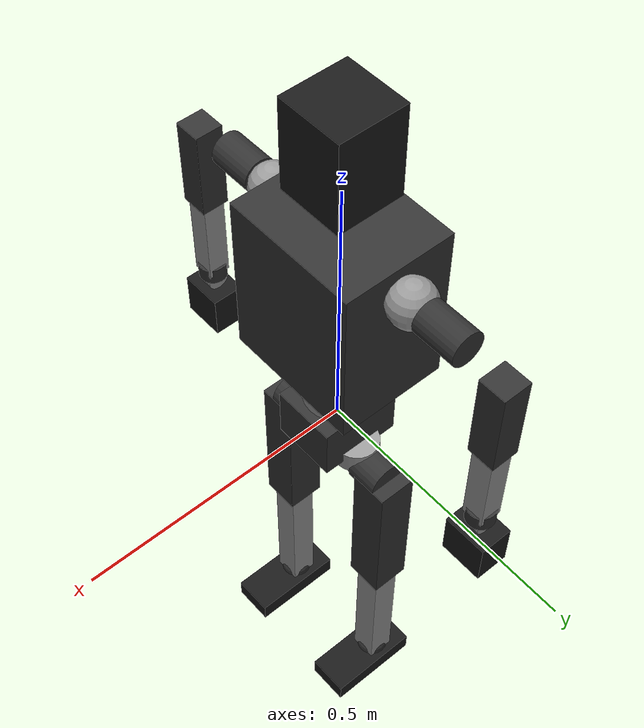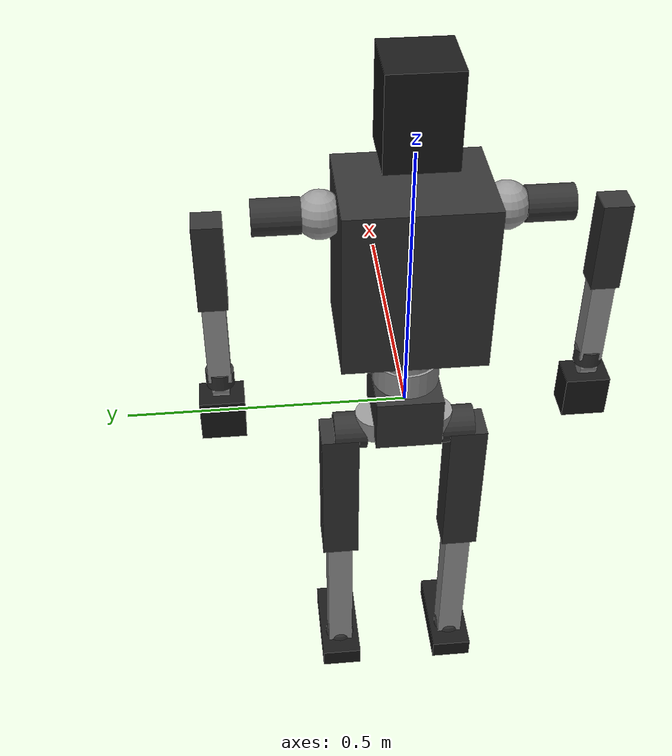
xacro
<?xml version="1.0"?>
<robot xmlns:xacro="http://www.ros.org/wiki/xacro" name="g1">
  <!--
    Unitree G1 Humanoid Robot URDF
    29 DOF Configuration:
    - 6 joints per leg (12 total for locomotion)
    - 3 joints in waist/torso
    - 7 joints per arm (14 total for manipulation)
  -->

  <!-- Properties -->
  <xacro:property name="PI" value="3.14159265359"/>

  <!-- Materials -->
  <material name="dark_grey">
    <color rgba="0.2 0.2 0.2 1.0"/>
  </material>
  <material name="light_grey">
    <color rgba="0.6 0.6 0.6 1.0"/>
  </material>
  <material name="black">
    <color rgba="0.1 0.1 0.1 1.0"/>
  </material>
  <material name="blue">
    <color rgba="0.0 0.4 0.8 1.0"/>
  </material>

  <!-- Base Link (Pelvis) -->
  <link name="base_link">
    <visual>
      <origin xyz="0 0 0" rpy="0 0 0"/>
      <geometry>
        <box size="0.15 0.12 0.10"/>
      </geometry>
      <material name="dark_grey"/>
    </visual>
    <collision>
      <origin xyz="0 0 0" rpy="0 0 0"/>
      <geometry>
        <box size="0.15 0.12 0.10"/>
      </geometry>
    </collision>
    <inertial>
      <origin xyz="0 0 0" rpy="0 0 0"/>
      <mass value="5.0"/>
      <inertia ixx="0.02" ixy="0" ixz="0" iyy="0.03" iyz="0" izz="0.02"/>
    </inertial>
  </link>

  <!-- ==================== WAIST/TORSO (3 DOF) ==================== -->

  <!-- Waist Yaw -->
  <joint name="waist_yaw_joint" type="revolute">
    <parent link="base_link"/>
    <child link="waist_yaw_link"/>
    <origin xyz="0 0 0.05" rpy="0 0 0"/>
    <axis xyz="0 0 1"/>
    <limit lower="-0.75" upper="0.75" effort="100" velocity="3.0"/>
    <dynamics damping="1.0" friction="0.1"/>
  </joint>

  <link name="waist_yaw_link">
    <visual>
      <origin xyz="0 0 0.025" rpy="0 0 0"/>
      <geometry>
        <cylinder radius="0.06" length="0.05"/>
      </geometry>
      <material name="light_grey"/>
    </visual>
    <collision>
      <origin xyz="0 0 0.025" rpy="0 0 0"/>
      <geometry>
        <cylinder radius="0.06" length="0.05"/>
      </geometry>
    </collision>
    <inertial>
      <origin xyz="0 0 0.025" rpy="0 0 0"/>
      <mass value="1.5"/>
      <inertia ixx="0.005" ixy="0" ixz="0" iyy="0.005" iyz="0" izz="0.003"/>
    </inertial>
  </link>

  <!-- Waist Roll -->
  <joint name="waist_roll_joint" type="revolute">
    <parent link="waist_yaw_link"/>
    <child link="waist_roll_link"/>
    <origin xyz="0 0 0.05" rpy="0 0 0"/>
    <axis xyz="1 0 0"/>
    <limit lower="-0.35" upper="0.35" effort="100" velocity="3.0"/>
    <dynamics damping="1.0" friction="0.1"/>
  </joint>

  <link name="waist_roll_link">
    <visual>
      <origin xyz="0 0 0.025" rpy="0 0 0"/>
      <geometry>
        <cylinder radius="0.055" length="0.05"/>
      </geometry>
      <material name="light_grey"/>
    </visual>
    <collision>
      <origin xyz="0 0 0.025" rpy="0 0 0"/>
      <geometry>
        <cylinder radius="0.055" length="0.05"/>
      </geometry>
    </collision>
    <inertial>
      <origin xyz="0 0 0.025" rpy="0 0 0"/>
      <mass value="1.2"/>
      <inertia ixx="0.004" ixy="0" ixz="0" iyy="0.004" iyz="0" izz="0.002"/>
    </inertial>
  </link>

  <!-- Waist Pitch (connects to torso) -->
  <joint name="waist_pitch_joint" type="revolute">
    <parent link="waist_roll_link"/>
    <child link="torso_link"/>
    <origin xyz="0 0 0.05" rpy="0 0 0"/>
    <axis xyz="0 1 0"/>
    <limit lower="-0.35" upper="0.35" effort="100" velocity="3.0"/>
    <dynamics damping="1.0" friction="0.1"/>
  </joint>

  <!-- Torso Link -->
  <link name="torso_link">
    <visual>
      <origin xyz="0 0 0.15" rpy="0 0 0"/>
      <geometry>
        <box size="0.20 0.25 0.30"/>
      </geometry>
      <material name="dark_grey"/>
    </visual>
    <collision>
      <origin xyz="0 0 0.15" rpy="0 0 0"/>
      <geometry>
        <box size="0.20 0.25 0.30"/>
      </geometry>
    </collision>
    <inertial>
      <origin xyz="0 0 0.15" rpy="0 0 0"/>
      <mass value="8.0"/>
      <inertia ixx="0.15" ixy="0" ixz="0" iyy="0.12" iyz="0" izz="0.08"/>
    </inertial>
  </link>

  <!-- Head (fixed) -->
  <joint name="head_joint" type="fixed">
    <parent link="torso_link"/>
    <child link="head_link"/>
    <origin xyz="0 0 0.35" rpy="0 0 0"/>
  </joint>

  <link name="head_link">
    <visual>
      <origin xyz="0 0 0.08" rpy="0 0 0"/>
      <geometry>
        <box size="0.12 0.12 0.16"/>
      </geometry>
      <material name="black"/>
    </visual>
    <collision>
      <origin xyz="0 0 0.08" rpy="0 0 0"/>
      <geometry>
        <box size="0.12 0.12 0.16"/>
      </geometry>
    </collision>
    <inertial>
      <origin xyz="0 0 0.08" rpy="0 0 0"/>
      <mass value="1.5"/>
      <inertia ixx="0.005" ixy="0" ixz="0" iyy="0.005" iyz="0" izz="0.003"/>
    </inertial>
  </link>

  <!-- ==================== ARM MACRO (7 DOF each) ==================== -->
  <xacro:macro name="arm" params="side parent y_offset">

    <!-- Shoulder Pitch -->
    <joint name="${side}_shoulder_pitch_joint" type="revolute">
      <parent link="${parent}"/>
      <child link="${side}_shoulder_pitch_link"/>
      <origin xyz="0 ${y_offset * 0.15} 0.25" rpy="0 0 0"/>
      <axis xyz="0 1 0"/>
      <limit lower="-2.87" upper="2.87" effort="50" velocity="5.0"/>
      <dynamics damping="0.5" friction="0.1"/>
    </joint>

    <link name="${side}_shoulder_pitch_link">
      <visual>
        <origin xyz="0 0 0" rpy="0 0 0"/>
        <geometry>
          <sphere radius="0.04"/>
        </geometry>
        <material name="light_grey"/>
      </visual>
      <collision>
        <origin xyz="0 0 0" rpy="0 0 0"/>
        <geometry>
          <sphere radius="0.04"/>
        </geometry>
      </collision>
      <inertial>
        <origin xyz="0 0 0" rpy="0 0 0"/>
        <mass value="0.8"/>
        <inertia ixx="0.001" ixy="0" ixz="0" iyy="0.001" iyz="0" izz="0.001"/>
      </inertial>
    </link>

    <!-- Shoulder Roll -->
    <joint name="${side}_shoulder_roll_joint" type="revolute">
      <parent link="${side}_shoulder_pitch_link"/>
      <child link="${side}_shoulder_roll_link"/>
      <origin xyz="0 ${y_offset * 0.02} 0" rpy="0 0 0"/>
      <axis xyz="1 0 0"/>
      <limit lower="${-1.5 if y_offset > 0 else -0.3}" upper="${0.3 if y_offset > 0 else 1.5}" effort="50" velocity="5.0"/>
      <dynamics damping="0.5" friction="0.1"/>
    </joint>

    <link name="${side}_shoulder_roll_link">
      <visual>
        <origin xyz="0 ${y_offset * 0.05} 0" rpy="${PI/2} 0 0"/>
        <geometry>
          <cylinder radius="0.03" length="0.08"/>
        </geometry>
        <material name="dark_grey"/>
      </visual>
      <collision>
        <origin xyz="0 ${y_offset * 0.05} 0" rpy="${PI/2} 0 0"/>
        <geometry>
          <cylinder radius="0.03" length="0.08"/>
        </geometry>
      </collision>
      <inertial>
        <origin xyz="0 ${y_offset * 0.05} 0" rpy="0 0 0"/>
        <mass value="0.6"/>
        <inertia ixx="0.0008" ixy="0" ixz="0" iyy="0.0008" iyz="0" izz="0.0005"/>
      </inertial>
    </link>

    <!-- Shoulder Yaw -->
    <joint name="${side}_shoulder_yaw_joint" type="revolute">
      <parent link="${side}_shoulder_roll_link"/>
      <child link="${side}_upper_arm_link"/>
      <origin xyz="0 ${y_offset * 0.08} 0" rpy="0 0 0"/>
      <axis xyz="0 0 1"/>
      <limit lower="-1.57" upper="1.57" effort="50" velocity="5.0"/>
      <dynamics damping="0.5" friction="0.1"/>
    </joint>

    <link name="${side}_upper_arm_link">
      <visual>
        <origin xyz="0 ${y_offset * 0.08} -0.08" rpy="0 0 0"/>
        <geometry>
          <box size="0.05 0.05 0.16"/>
        </geometry>
        <material name="dark_grey"/>
      </visual>
      <collision>
        <origin xyz="0 ${y_offset * 0.08} -0.08" rpy="0 0 0"/>
        <geometry>
          <box size="0.05 0.05 0.16"/>
        </geometry>
      </collision>
      <inertial>
        <origin xyz="0 ${y_offset * 0.08} -0.08" rpy="0 0 0"/>
        <mass value="1.0"/>
        <inertia ixx="0.003" ixy="0" ixz="0" iyy="0.003" iyz="0" izz="0.001"/>
      </inertial>
    </link>

    <!-- Elbow -->
    <joint name="${side}_elbow_joint" type="revolute">
      <parent link="${side}_upper_arm_link"/>
      <child link="${side}_lower_arm_link"/>
      <origin xyz="0 ${y_offset * 0.08} -0.16" rpy="0 0 0"/>
      <axis xyz="0 1 0"/>
      <limit lower="${-2.35 if y_offset > 0 else 0}" upper="${0 if y_offset > 0 else 2.35}" effort="50" velocity="5.0"/>
      <dynamics damping="0.5" friction="0.1"/>
    </joint>

    <link name="${side}_lower_arm_link">
      <visual>
        <origin xyz="0 0 -0.08" rpy="0 0 0"/>
        <geometry>
          <box size="0.04 0.04 0.16"/>
        </geometry>
        <material name="light_grey"/>
      </visual>
      <collision>
        <origin xyz="0 0 -0.08" rpy="0 0 0"/>
        <geometry>
          <box size="0.04 0.04 0.16"/>
        </geometry>
      </collision>
      <inertial>
        <origin xyz="0 0 -0.08" rpy="0 0 0"/>
        <mass value="0.8"/>
        <inertia ixx="0.002" ixy="0" ixz="0" iyy="0.002" iyz="0" izz="0.0008"/>
      </inertial>
    </link>

    <!-- Wrist Yaw -->
    <joint name="${side}_wrist_yaw_joint" type="revolute">
      <parent link="${side}_lower_arm_link"/>
      <child link="${side}_wrist_yaw_link"/>
      <origin xyz="0 0 -0.16" rpy="0 0 0"/>
      <axis xyz="0 0 1"/>
      <limit lower="-1.57" upper="1.57" effort="20" velocity="5.0"/>
      <dynamics damping="0.3" friction="0.05"/>
    </joint>

    <link name="${side}_wrist_yaw_link">
      <visual>
        <origin xyz="0 0 0" rpy="0 0 0"/>
        <geometry>
          <cylinder radius="0.025" length="0.03"/>
        </geometry>
        <material name="dark_grey"/>
      </visual>
      <collision>
        <origin xyz="0 0 0" rpy="0 0 0"/>
        <geometry>
          <cylinder radius="0.025" length="0.03"/>
        </geometry>
      </collision>
      <inertial>
        <origin xyz="0 0 0" rpy="0 0 0"/>
        <mass value="0.2"/>
        <inertia ixx="0.0001" ixy="0" ixz="0" iyy="0.0001" iyz="0" izz="0.0001"/>
      </inertial>
    </link>

    <!-- Wrist Roll -->
    <joint name="${side}_wrist_roll_joint" type="revolute">
      <parent link="${side}_wrist_yaw_link"/>
      <child link="${side}_wrist_roll_link"/>
      <origin xyz="0 0 -0.02" rpy="0 0 0"/>
      <axis xyz="1 0 0"/>
      <limit lower="-1.57" upper="1.57" effort="20" velocity="5.0"/>
      <dynamics damping="0.3" friction="0.05"/>
    </joint>

    <link name="${side}_wrist_roll_link">
      <visual>
        <origin xyz="0 0 0" rpy="${PI/2} 0 0"/>
        <geometry>
          <cylinder radius="0.02" length="0.03"/>
        </geometry>
        <material name="light_grey"/>
      </visual>
      <collision>
        <origin xyz="0 0 0" rpy="${PI/2} 0 0"/>
        <geometry>
          <cylinder radius="0.02" length="0.03"/>
        </geometry>
      </collision>
      <inertial>
        <origin xyz="0 0 0" rpy="0 0 0"/>
        <mass value="0.15"/>
        <inertia ixx="0.00008" ixy="0" ixz="0" iyy="0.00008" iyz="0" izz="0.00005"/>
      </inertial>
    </link>

    <!-- Wrist Pitch (connects to hand) -->
    <joint name="${side}_wrist_pitch_joint" type="revolute">
      <parent link="${side}_wrist_roll_link"/>
      <child link="${side}_hand_link"/>
      <origin xyz="0 0 -0.02" rpy="0 0 0"/>
      <axis xyz="0 1 0"/>
      <limit lower="-1.0" upper="1.0" effort="20" velocity="5.0"/>
      <dynamics damping="0.3" friction="0.05"/>
    </joint>

    <link name="${side}_hand_link">
      <visual>
        <origin xyz="0 0 -0.04" rpy="0 0 0"/>
        <geometry>
          <box size="0.06 0.08 0.08"/>
        </geometry>
        <material name="black"/>
      </visual>
      <collision>
        <origin xyz="0 0 -0.04" rpy="0 0 0"/>
        <geometry>
          <box size="0.06 0.08 0.08"/>
        </geometry>
      </collision>
      <inertial>
        <origin xyz="0 0 -0.04" rpy="0 0 0"/>
        <mass value="0.4"/>
        <inertia ixx="0.0005" ixy="0" ixz="0" iyy="0.0005" iyz="0" izz="0.0003"/>
      </inertial>
    </link>

  </xacro:macro>

  <!-- ==================== LEG MACRO (6 DOF each) ==================== -->
  <xacro:macro name="leg" params="side parent y_offset">

    <!-- Hip Yaw -->
    <joint name="${side}_hip_yaw_joint" type="revolute">
      <parent link="${parent}"/>
      <child link="${side}_hip_yaw_link"/>
      <origin xyz="0 ${y_offset * 0.05} -0.05" rpy="0 0 0"/>
      <axis xyz="0 0 1"/>
      <limit lower="-0.43" upper="0.43" effort="150" velocity="3.0"/>
      <dynamics damping="2.0" friction="0.2"/>
    </joint>

    <link name="${side}_hip_yaw_link">
      <visual>
        <origin xyz="0 0 0" rpy="0 0 0"/>
        <geometry>
          <cylinder radius="0.04" length="0.04"/>
        </geometry>
        <material name="light_grey"/>
      </visual>
      <collision>
        <origin xyz="0 0 0" rpy="0 0 0"/>
        <geometry>
          <cylinder radius="0.04" length="0.04"/>
        </geometry>
      </collision>
      <inertial>
        <origin xyz="0 0 0" rpy="0 0 0"/>
        <mass value="1.0"/>
        <inertia ixx="0.002" ixy="0" ixz="0" iyy="0.002" iyz="0" izz="0.001"/>
      </inertial>
    </link>

    <!-- Hip Roll -->
    <joint name="${side}_hip_roll_joint" type="revolute">
      <parent link="${side}_hip_yaw_link"/>
      <child link="${side}_hip_roll_link"/>
      <origin xyz="0 ${y_offset * 0.02} -0.02" rpy="0 0 0"/>
      <axis xyz="1 0 0"/>
      <limit lower="${-0.43 if y_offset > 0 else -0.43}" upper="${0.43 if y_offset > 0 else 0.43}" effort="150" velocity="3.0"/>
      <dynamics damping="2.0" friction="0.2"/>
    </joint>

    <link name="${side}_hip_roll_link">
      <visual>
        <origin xyz="0 ${y_offset * 0.03} 0" rpy="${PI/2} 0 0"/>
        <geometry>
          <cylinder radius="0.035" length="0.06"/>
        </geometry>
        <material name="dark_grey"/>
      </visual>
      <collision>
        <origin xyz="0 ${y_offset * 0.03} 0" rpy="${PI/2} 0 0"/>
        <geometry>
          <cylinder radius="0.035" length="0.06"/>
        </geometry>
      </collision>
      <inertial>
        <origin xyz="0 ${y_offset * 0.03} 0" rpy="0 0 0"/>
        <mass value="0.8"/>
        <inertia ixx="0.0015" ixy="0" ixz="0" iyy="0.0015" iyz="0" izz="0.0008"/>
      </inertial>
    </link>

    <!-- Hip Pitch -->
    <joint name="${side}_hip_pitch_joint" type="revolute">
      <parent link="${side}_hip_roll_link"/>
      <child link="${side}_thigh_link"/>
      <origin xyz="0 ${y_offset * 0.05} 0" rpy="0 0 0"/>
      <axis xyz="0 1 0"/>
      <limit lower="-1.57" upper="0.52" effort="200" velocity="3.0"/>
      <dynamics damping="2.0" friction="0.2"/>
    </joint>

    <link name="${side}_thigh_link">
      <visual>
        <origin xyz="0 0 -0.15" rpy="0 0 0"/>
        <geometry>
          <box size="0.07 0.07 0.30"/>
        </geometry>
        <material name="dark_grey"/>
      </visual>
      <collision>
        <origin xyz="0 0 -0.15" rpy="0 0 0"/>
        <geometry>
          <box size="0.07 0.07 0.30"/>
        </geometry>
      </collision>
      <inertial>
        <origin xyz="0 0 -0.15" rpy="0 0 0"/>
        <mass value="3.0"/>
        <inertia ixx="0.03" ixy="0" ixz="0" iyy="0.03" iyz="0" izz="0.005"/>
      </inertial>
    </link>

    <!-- Knee -->
    <joint name="${side}_knee_joint" type="revolute">
      <parent link="${side}_thigh_link"/>
      <child link="${side}_calf_link"/>
      <origin xyz="0 0 -0.30" rpy="0 0 0"/>
      <axis xyz="0 1 0"/>
      <limit lower="0.0" upper="2.53" effort="200" velocity="3.0"/>
      <dynamics damping="2.0" friction="0.2"/>
    </joint>

    <link name="${side}_calf_link">
      <visual>
        <origin xyz="0 0 -0.15" rpy="0 0 0"/>
        <geometry>
          <box size="0.05 0.05 0.30"/>
        </geometry>
        <material name="light_grey"/>
      </visual>
      <collision>
        <origin xyz="0 0 -0.15" rpy="0 0 0"/>
        <geometry>
          <box size="0.05 0.05 0.30"/>
        </geometry>
      </collision>
      <inertial>
        <origin xyz="0 0 -0.15" rpy="0 0 0"/>
        <mass value="2.0"/>
        <inertia ixx="0.02" ixy="0" ixz="0" iyy="0.02" iyz="0" izz="0.003"/>
      </inertial>
    </link>

    <!-- Ankle Pitch -->
    <joint name="${side}_ankle_pitch_joint" type="revolute">
      <parent link="${side}_calf_link"/>
      <child link="${side}_ankle_link"/>
      <origin xyz="0 0 -0.30" rpy="0 0 0"/>
      <axis xyz="0 1 0"/>
      <limit lower="-0.87" upper="0.52" effort="100" velocity="3.0"/>
      <dynamics damping="1.5" friction="0.15"/>
    </joint>

    <link name="${side}_ankle_link">
      <visual>
        <origin xyz="0 0 0" rpy="0 0 0"/>
        <geometry>
          <sphere radius="0.03"/>
        </geometry>
        <material name="dark_grey"/>
      </visual>
      <collision>
        <origin xyz="0 0 0" rpy="0 0 0"/>
        <geometry>
          <sphere radius="0.03"/>
        </geometry>
      </collision>
      <inertial>
        <origin xyz="0 0 0" rpy="0 0 0"/>
        <mass value="0.5"/>
        <inertia ixx="0.0003" ixy="0" ixz="0" iyy="0.0003" iyz="0" izz="0.0002"/>
      </inertial>
    </link>

    <!-- Ankle Roll -->
    <joint name="${side}_ankle_roll_joint" type="revolute">
      <parent link="${side}_ankle_link"/>
      <child link="${side}_foot_link"/>
      <origin xyz="0 0 0" rpy="0 0 0"/>
      <axis xyz="1 0 0"/>
      <limit lower="-0.26" upper="0.26" effort="100" velocity="3.0"/>
      <dynamics damping="1.5" friction="0.15"/>
    </joint>

    <link name="${side}_foot_link">
      <visual>
        <origin xyz="0.03 0 -0.02" rpy="0 0 0"/>
        <geometry>
          <box size="0.18 0.08 0.04"/>
        </geometry>
        <material name="black"/>
      </visual>
      <collision>
        <origin xyz="0.03 0 -0.02" rpy="0 0 0"/>
        <geometry>
          <box size="0.18 0.08 0.04"/>
        </geometry>
      </collision>
      <inertial>
        <origin xyz="0.03 0 -0.02" rpy="0 0 0"/>
        <mass value="0.8"/>
        <inertia ixx="0.001" ixy="0" ixz="0" iyy="0.003" iyz="0" izz="0.003"/>
      </inertial>
    </link>

  </xacro:macro>

  <!-- ==================== INSTANTIATE LIMBS ==================== -->

  <!-- Left Arm (y_offset = 1) -->
  <xacro:arm side="left" parent="torso_link" y_offset="1"/>

  <!-- Right Arm (y_offset = -1) -->
  <xacro:arm side="right" parent="torso_link" y_offset="-1"/>

  <!-- Left Leg (y_offset = 1) -->
  <xacro:leg side="left" parent="base_link" y_offset="1"/>

  <!-- Right Leg (y_offset = -1) -->
  <xacro:leg side="right" parent="base_link" y_offset="-1"/>

</robot>
